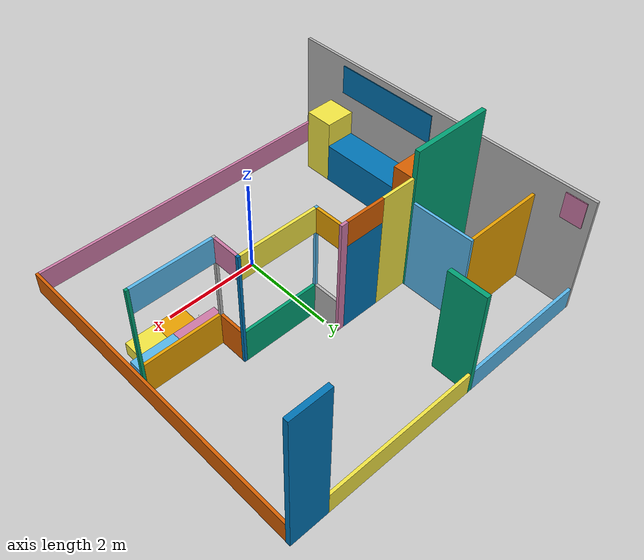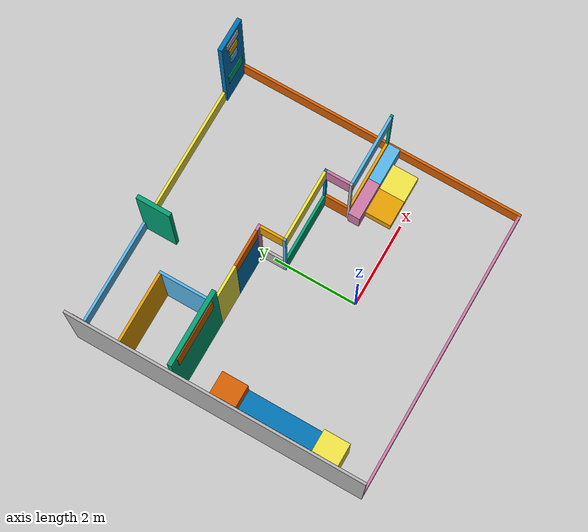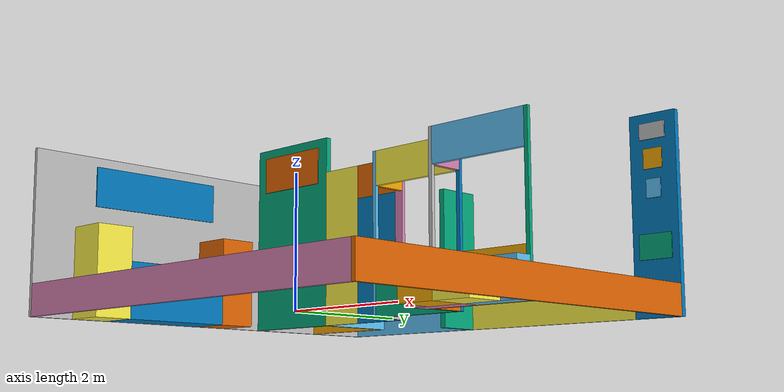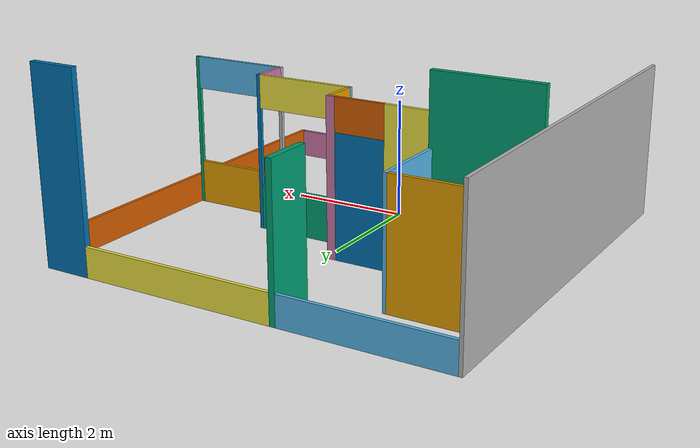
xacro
<?xml version="1.0"?>
<robot xmlns:xacro="http://www.ros.org/wiki/xacro"
       name="ipa-kitchen">

  <xacro:include filename="$(find cob_gazebo_worlds)/urdf/common.xacro" />
  <xacro:include filename="$(find cob_gazebo_worlds)/urdf/materials.urdf.xacro" />

  <xacro:macro name="ipa-kitchen" params="name">

  <gazebo>
    <plugin name="environment_gazebo_ros_control" filename="libgazebo_ros_control.so">
      <robotNamespace>world</robotNamespace>
      <robotParam>/world_description</robotParam>
    </plugin>
  </gazebo>

  <!-- world -->
  <link name="world"/>

  <!-- walls -->
  <!-- wall_00 -->
  <link name="wall_00">
    <xacro:box_inertial x="2.75" y="0.06" z="0.50" mass="5.0">
      <origin xyz="0 0 0" rpy="0 0 0" />
    </xacro:box_inertial>
    <visual>
      <origin xyz="0 0 0" />
      <geometry>
        <box size="2.75 0.06 0.50" />
      </geometry>
    </visual>
    <collision>
      <origin xyz="0 0 0" />
      <geometry>
        <box size="2.77 0.08 0.52" />
      </geometry>
    </collision>
  </link>

  <gazebo reference="wall_00">
    <material>IPA/Wall2</material>
  </gazebo>

  <joint name="joint_wall_00" type="fixed">
    <origin xyz="-2.156 4.791 0.250" rpy="0 0 0" />
    <parent link="world" />
    <child link="wall_00" />
  </joint>

  <!-- wall_01 -->
  <link name="wall_01">
    <xacro:box_inertial x="0.10" y="0.80" z="2.40" mass="5.0">
      <origin xyz="0 0 0" rpy="0 0 0" />
    </xacro:box_inertial>
    <visual>
      <origin xyz="0 0 0" />
      <geometry>
        <box size="0.10 0.80 2.40" />
      </geometry>
    </visual>
    <collision>
      <origin xyz="0 0 0" />
      <geometry>
        <box size="0.12 0.82 2.42" />
      </geometry>
    </collision>
  </link>

  <gazebo reference="wall_01">
    <material>IPA/Wall3</material>
  </gazebo>

  <joint name="joint_wall_01" type="fixed">
    <origin xyz="-0.731 4.421 1.200" rpy="0 0 0" />
    <parent link="world" />
    <child link="wall_01" />
  </joint>

  <!-- wall_02 -->
  <link name="wall_02">
    <xacro:box_inertial x="3.29" y="0.06" z="0.50" mass="5.0">
      <origin xyz="0 0 0" rpy="0 0 0" />
    </xacro:box_inertial>
    <visual>
      <origin xyz="0 0 0" />
      <geometry>
        <box size="3.29 0.06 0.50" />
      </geometry>
    </visual>
    <collision>
      <origin xyz="0 0 0" />
      <geometry>
        <box size="3.31 0.08 0.52" />
      </geometry>
    </collision>
  </link>

  <gazebo reference="wall_02">
    <material>IPA/Wall2</material>
  </gazebo>

  <joint name="joint_wall_02" type="fixed">
    <origin xyz="0.964 4.791 0.250" rpy="0 0 0" />
    <parent link="world" />
    <child link="wall_02" />
  </joint>

  <!-- wall_03 -->
  <link name="wall_03">
    <xacro:box_inertial x="0.80" y="0.10" z="3.20" mass="5.0">
      <origin xyz="0 0 0" rpy="0 0 0" />
    </xacro:box_inertial>
    <visual>
      <origin xyz="0 0 0" />
      <geometry>
        <box size="0.80 0.10 3.20" />
      </geometry>
    </visual>
    <collision>
      <origin xyz="0 0 0" />
      <geometry>
        <box size="0.82 0.12 3.22" />
      </geometry>
    </collision>
  </link>

  <gazebo reference="wall_03">
    <material>IPA/Wall</material>
  </gazebo>

  <joint name="joint_wall_03" type="fixed">
    <origin xyz="3.009 4.771 1.600" rpy="0 0 0" />
    <parent link="world" />
    <child link="wall_03" />
  </joint>

  <!-- wall_04 -->
  <link name="wall_04">
    <xacro:box_inertial x="0.06" y="6.90" z="0.50" mass="5.0">
      <origin xyz="0 0 0" rpy="0 0 0" />
    </xacro:box_inertial>
    <visual>
      <origin xyz="0 0 0" />
      <geometry>
        <box size="0.06 6.90 0.50" />
      </geometry>
    </visual>
    <collision>
      <origin xyz="0 0 0" />
      <geometry>
        <box size="0.08 6.92 0.52" />
      </geometry>
    </collision>
  </link>

  <gazebo reference="wall_04">
    <material>IPA/Wall2</material>
  </gazebo>

  <joint name="joint_wall_04" type="fixed">
    <origin xyz="3.379 1.271 0.250" rpy="0 0 0" />
    <parent link="world" />
    <child link="wall_04" />
  </joint>

  <!-- wall_06 -->
  <link name="wall_06">
    <xacro:box_inertial x="6.88" y="0.06" z="0.50" mass="5.0">
      <origin xyz="0 0 0" rpy="0 0 0" />
    </xacro:box_inertial>
    <visual>
      <origin xyz="0 0 0" />
      <geometry>
        <box size="6.88 0.06 0.50" />
      </geometry>
    </visual>
    <collision>
      <origin xyz="0 0 0" />
      <geometry>
        <box size="6.90 0.08 0.52" />
      </geometry>
    </collision>
  </link>

  <gazebo reference="wall_06">
    <material>IPA/Wall2</material>
  </gazebo>

  <joint name="joint_wall_06" type="fixed">
    <origin xyz="-0.091 -2.149 0.250" rpy="0 0 0" />
    <parent link="world" />
    <child link="wall_06" />
  </joint>

  <!-- wall_07 -->
  <link name="wall_07">
    <xacro:box_inertial x="0.06" y="7.00" z="2.60" mass="5.0">
      <origin xyz="0 0 0" rpy="0 0 0" />
    </xacro:box_inertial>
    <visual>
      <origin xyz="0 0 0" />
      <geometry>
        <box size="0.06 7.00 2.60" />
      </geometry>
    </visual>
    <collision>
      <origin xyz="0 0 0" />
      <geometry>
        <box size="0.08 7.02 2.62" />
      </geometry>
    </collision>
  </link>

  <gazebo reference="wall_07">
    <material>IPA/Wall</material>
  </gazebo>

  <joint name="joint_wall_07" type="fixed">
    <origin xyz="-3.561 1.321 1.300" rpy="0 0 0" />
    <parent link="world" />
    <child link="wall_07" />
  </joint>

  <!-- wall_08 -->
  <link name="wall_08">
    <xacro:box_inertial x="1.69" y="0.06" z="2.06" mass="5.0">
      <origin xyz="0 0 0" rpy="0 0 0" />
    </xacro:box_inertial>
    <visual>
      <origin xyz="0 0 0" />
      <geometry>
        <box size="1.69 0.06 2.06" />
      </geometry>
    </visual>
    <collision>
      <origin xyz="0 0 0" />
      <geometry>
        <box size="1.71 0.08 2.08" />
      </geometry>
    </collision>
  </link>

  <gazebo reference="wall_08">
    <material>IPA/Wall</material>
  </gazebo>

  <joint name="joint_wall_08" type="fixed">
    <origin xyz="-2.686 3.641 1.030" rpy="0 0 0" />
    <parent link="world" />
    <child link="wall_08" />
  </joint>

  <!-- wall_09 -->
  <link name="wall_09">
    <xacro:box_inertial x="0.06" y="1.30" z="2.06" mass="5.0">
      <origin xyz="0 0 0" rpy="0 0 0" />
    </xacro:box_inertial>
    <visual>
      <origin xyz="0 0 0" />
      <geometry>
        <box size="0.06 1.30 2.06" />
      </geometry>
    </visual>
    <collision>
      <origin xyz="0 0 0" />
      <geometry>
        <box size="0.08 1.32 2.08" />
      </geometry>
    </collision>
  </link>

  <gazebo reference="wall_09">
    <material>IPA/Wall</material>
  </gazebo>

  <joint name="joint_wall_09" type="fixed">
    <origin xyz="-1.811 3.021 1.030" rpy="0 0 0" />
    <parent link="world" />
    <child link="wall_09" />
  </joint>

  <!-- wall_10 -->
  <link name="wall_10">
    <xacro:box_inertial x="1.75" y="0.10" z="3.20" mass="5.0">
      <origin xyz="0 0 0" rpy="0 0 0" />
    </xacro:box_inertial>
    <visual>
      <origin xyz="0 0 0" />
      <geometry>
        <box size="1.75 0.10 3.20" />
      </geometry>
    </visual>
    <collision>
      <origin xyz="0 0 0" />
      <geometry>
        <box size="1.77 0.08 3.22" />
      </geometry>
    </collision>
  </link>

  <gazebo reference="wall_10">
    <material>IPA/Wall</material>
  </gazebo>

  <joint name="joint_wall_10" type="fixed">
    <origin xyz="-2.656 2.321 1.600" rpy="0 0 0" />
    <parent link="world" />
    <child link="wall_10" />
  </joint>

  <!-- wall_11 -->
  <link name="wall_11">
    <xacro:box_inertial x="0.75" y="0.06" z="2.60" mass="5.0">
      <origin xyz="0 0 0" rpy="0 0 0" />
    </xacro:box_inertial>
    <visual>
      <origin xyz="0 0 0" />
      <geometry>
        <box size="0.75 0.06 2.60" />
      </geometry>
    </visual>
    <collision>
      <origin xyz="0 0 0" />
      <geometry>
        <box size="0.77 0.08 2.62" />
      </geometry>
    </collision>
  </link>

  <gazebo reference="wall_11">
    <material>IPA/Wall</material>
  </gazebo>

  <joint name="joint_wall_11" type="fixed">
    <origin xyz="-1.406 2.301 1.300" rpy="0 0 0" />
    <parent link="world" />
    <child link="wall_11" />
  </joint>

  <!-- door -->
  <link name="door">
    <xacro:default_inertial/>
    <visual>
      <origin xyz="0.425 0 0" />
      <geometry>
        <box size="0.85 0.06 2.05" />
      </geometry>
    </visual>
    <collision>
      <origin xyz="0.425 0 0" />
      <geometry>
        <box size="0.75 0.06 2.01" />
      </geometry>
    </collision>
  </link>

  <gazebo reference="door">
    <material>IPA/Wall2</material>
  </gazebo>

  <joint name="door_joint" type="revolute" >
    <origin xyz="0.375 0.0 -0.275" rpy="0 0 0" />
    <parent link="wall_11" />
    <child link="door" />
    <axis xyz="0 0 1" />
    <limit effort="0.1" velocity="1" lower="-1.8" upper="1.8" />
  </joint>

  <transmission name="door_trans">
    <type>transmission_interface/SimpleTransmission</type>
    <joint name="door_joint">
      <hardwareInterface>hardware_interface/VelocityJointInterface</hardwareInterface>
    </joint>
    <actuator name="door_motor">
      <mechanicalReduction>1</mechanicalReduction>
    </actuator>
  </transmission>

  <!-- wall_12 -->
  <link name="wall_12">
    <xacro:box_inertial x="0.85" y="0.06" z="0.55" mass="5.0">
      <origin xyz="0 0 0" rpy="0 0 0" />
    </xacro:box_inertial>
    <visual>
      <origin xyz="0 0 0" />
      <geometry>
        <box size="0.85 0.06 0.55" />
      </geometry>
    </visual>
    <collision>
      <origin xyz="0 0 0" />
      <geometry>
        <box size="0.87 0.08 0.57" />
      </geometry>
    </collision>
  </link>

  <gazebo reference="wall_12">
    <material>IPA/Wall</material>
  </gazebo>

  <joint name="joint_wall_12" type="fixed">
    <origin xyz="-0.606 2.301 2.325" rpy="0 0 0" />
    <parent link="world" />
    <child link="wall_12" />
  </joint>

  <!-- wall_13 -->
  <link name="wall_13">
    <xacro:box_inertial x="0.15" y="0.06" z="2.60" mass="5.0">
      <origin xyz="0 0 0" rpy="0 0 0" />
    </xacro:box_inertial>
    <visual>
      <origin xyz="0 0 0" />
      <geometry>
        <box size="0.15 0.06 2.60" />
      </geometry>
    </visual>
    <collision>
      <origin xyz="0 0 0" />
      <geometry>
        <box size="0.17 0.08 2.62" />
      </geometry>
    </collision>
  </link>

  <gazebo reference="wall_13">
    <material>IPA/Wall</material>
  </gazebo>

  <joint name="joint_wall_13" type="fixed">
    <origin xyz="-0.106 2.301 1.300" rpy="0 0 0" />
    <parent link="world" />
    <child link="wall_13" />
  </joint>

  <!-- wall_14 -->
  <link name="wall_14">
    <xacro:box_inertial x="0.06" y="0.54" z="0.75" mass="5.0">
      <origin xyz="0 0 0" rpy="0 0 0" />
    </xacro:box_inertial>
    <visual>
      <origin xyz="0 0 0" />
      <geometry>
        <box size="0.06 0.54 0.75" />
      </geometry>
    </visual>
    <collision>
      <origin xyz="0 0 0" />
      <geometry>
        <box size="0.08 0.56 0.77" />
      </geometry>
    </collision>
  </link>

  <gazebo reference="wall_14">
    <material>IPA/Wall</material>
  </gazebo>

  <joint name="joint_wall_14" type="fixed">
    <origin xyz="-0.061 2.001 0.375" rpy="0 0 0" />
    <parent link="world" />
    <child link="wall_14" />
  </joint>

  <!-- wall_15 -->
  <link name="wall_15">
    <xacro:box_inertial x="0.06" y="0.54" z="0.55" mass="5.0">
      <origin xyz="0 0 0" rpy="0 0 0" />
    </xacro:box_inertial>
    <visual>
      <origin xyz="0 0 0" />
      <geometry>
        <box size="0.06 0.54 0.55" />
      </geometry>
    </visual>
    <collision>
      <origin xyz="0 0 0" />
      <geometry>
        <box size="0.08 0.56 0.57" />
      </geometry>
    </collision>
  </link>

  <gazebo reference="wall_15">
    <material>IPA/Wall</material>
  </gazebo>

  <joint name="joint_wall_15" type="fixed">
    <origin xyz="-0.061 2.001 2.325" rpy="0 0 0" />
    <parent link="world" />
    <child link="wall_15" />
  </joint>

  <!-- wall_16 -->
  <link name="wall_16">
    <xacro:box_inertial x="0.06" y="0.06" z="2.60" mass="5.0">
      <origin xyz="0 0 0" rpy="0 0 0" />
    </xacro:box_inertial>
    <visual>
      <origin xyz="0 0 0" />
      <geometry>
        <box size="0.06 0.06 2.60" />
      </geometry>
    </visual>
    <collision>
      <origin xyz="0 0 0" />
      <geometry>
        <box size="0.08 0.08 2.62" />
      </geometry>
    </collision>
  </link>

  <gazebo reference="wall_16">
    <material>IPA/Wall</material>
  </gazebo>

  <joint name="joint_wall_16" type="fixed">
    <origin xyz="-0.061 1.701 1.300" rpy="0 0 0" />
    <parent link="world" />
    <child link="wall_16" />
  </joint>

  <!-- wall_17 -->
  <link name="wall_17">
    <xacro:box_inertial x="1.63" y="0.06" z="0.75" mass="5.0">
      <origin xyz="0 0 0" rpy="0 0 0" />
    </xacro:box_inertial>
    <visual>
      <origin xyz="0 0 0" />
      <geometry>
        <box size="1.63 0.06 0.75" />
      </geometry>
    </visual>
    <collision>
      <origin xyz="0 0 0" />
      <geometry>
        <box size="1.65 0.08 0.77" />
      </geometry>
    </collision>
  </link>

  <gazebo reference="wall_17">
    <material>IPA/Wall</material>
  </gazebo>

  <joint name="joint_wall_17" type="fixed">
    <origin xyz="0.784 1.701 0.375" rpy="0 0 0" />
    <parent link="world" />
    <child link="wall_17" />
  </joint>

  <!-- wall_18 -->
  <link name="wall_18">
    <xacro:box_inertial x="1.63" y="0.06" z="0.55" mass="5.0">
      <origin xyz="0 0 0" rpy="0 0 0" />
    </xacro:box_inertial>
    <visual>
      <origin xyz="0 0 0" />
      <geometry>
        <box size="1.63 0.06 0.55" />
      </geometry>
    </visual>
    <collision>
      <origin xyz="0 0 0" />
      <geometry>
        <box size="1.65 0.08 0.57" />
      </geometry>
    </collision>
  </link>

  <gazebo reference="wall_18">
    <material>IPA/Wall</material>
  </gazebo>

  <joint name="joint_wall_18" type="fixed">
    <origin xyz="0.784 1.701 2.325" rpy="0 0 0" />
    <parent link="world" />
    <child link="wall_18" />
  </joint>

  <!-- wall_19 -->
  <link name="wall_19">
    <xacro:box_inertial x="0.06" y="0.06" z="2.60" mass="5.0">
      <origin xyz="0 0 0" rpy="0 0 0" />
    </xacro:box_inertial>
    <visual>
      <origin xyz="0 0 0" />
      <geometry>
        <box size="0.06 0.06 2.60" />
      </geometry>
    </visual>
    <collision>
      <origin xyz="0 0 0" />
      <geometry>
        <box size="0.08 0.08 2.62" />
      </geometry>
    </collision>
  </link>

  <gazebo reference="wall_19">
    <material>IPA/Wall</material>
  </gazebo>

  <joint name="joint_wall_19" type="fixed">
    <origin xyz="1.629 1.701 1.300" rpy="0 0 0" />
    <parent link="world" />
    <child link="wall_19" />
  </joint>

  <!-- wall_20 -->
  <link name="wall_20">
    <xacro:box_inertial x="0.6" y="0.54" z="0.75" mass="5.0">
      <origin xyz="0 0 0" rpy="0 0 0" />
    </xacro:box_inertial>
    <visual>
      <origin xyz="0 0 0" />
      <geometry>
        <box size="0.06 0.54 0.75" />
      </geometry>
    </visual>
    <collision>
      <origin xyz="0 0 0" />
      <geometry>
        <box size="0.08 0.56 0.77" />
      </geometry>
    </collision>
  </link>

  <gazebo reference="wall_20">
    <material>IPA/Wall</material>
  </gazebo>

  <joint name="joint_wall_20" type="fixed">
    <origin xyz="1.629 1.401 0.375" rpy="0 0 0" />
    <parent link="world" />
    <child link="wall_20" />
  </joint>

  <!-- wall_21 -->
  <link name="wall_21">
    <xacro:box_inertial x="0.6" y="0.54" z="0.55" mass="5.0">
      <origin xyz="0 0 0" rpy="0 0 0" />
    </xacro:box_inertial>
    <visual>
      <origin xyz="0 0 0" />
      <geometry>
        <box size="0.06 0.54 0.55" />
      </geometry>
    </visual>
    <collision>
      <origin xyz="0 0 0" />
      <geometry>
        <box size="0.08 0.56 0.57" />
      </geometry>
    </collision>
  </link>

  <gazebo reference="wall_21">
    <material>IPA/Wall</material>
  </gazebo>

  <joint name="joint_wall_21" type="fixed">
    <origin xyz="1.629 1.401 2.325" rpy="0 0 0" />
    <parent link="world" />
    <child link="wall_21" />
  </joint>

  <!-- wall_22 -->
  <link name="wall_22">
    <xacro:box_inertial x="0.6" y="0.6" z="2.60" mass="5.0">
      <origin xyz="0 0 0" rpy="0 0 0" />
    </xacro:box_inertial>
    <visual>
      <origin xyz="0 0 0" />
      <geometry>
        <box size="0.06 0.06 2.60" />
      </geometry>
    </visual>
    <collision>
      <origin xyz="0 0 0" />
      <geometry>
        <box size="0.08 0.08 2.62" />
      </geometry>
    </collision>
  </link>

  <gazebo reference="wall_22">
    <material>IPA/Wall</material>
  </gazebo>

  <joint name="joint_wall_22" type="fixed">
    <origin xyz="1.629 1.101 1.300" rpy="0 0 0" />
    <parent link="world" />
    <child link="wall_22" />
  </joint>

  <!-- wall_23 -->
  <link name="wall_23">
    <xacro:box_inertial x="1.65" y="0.06" z="0.75" mass="5.0">
      <origin xyz="0 0 0" rpy="0 0 0" />
    </xacro:box_inertial>
    <visual>
      <origin xyz="0 0 0" />
      <geometry>
        <box size="1.63 0.06 0.75" />
      </geometry>
    </visual>
    <collision>
      <origin xyz="0 0 0" />
      <geometry>
        <box size="1.65 0.08 0.77" />
      </geometry>
    </collision>
  </link>

  <gazebo reference="wall_23">
    <material>IPA/Wall</material>
  </gazebo>

  <joint name="joint_wall_23" type="fixed">
    <origin xyz="2.474 1.101 0.375" rpy="0 0 0" />
    <parent link="world" />
    <child link="wall_23" />
  </joint>

  <!-- wall_24 -->
  <link name="wall_24">
    <xacro:box_inertial x="1.63" y="0.06" z="0.55" mass="5.0">
      <origin xyz="0 0 0" rpy="0 0 0" />
    </xacro:box_inertial>
    <visual>
      <origin xyz="0 0 0" />
      <geometry>
        <box size="1.63 0.06 0.55" />
      </geometry>
    </visual>
    <collision>
      <origin xyz="0 0 0" />
      <geometry>
        <box size="1.65 0.08 0.57" />
      </geometry>
    </collision>
  </link>

  <gazebo reference="wall_24">
    <material>IPA/Wall</material>
  </gazebo>

  <joint name="joint_wall_24" type="fixed">
    <origin xyz="2.474 1.101 2.325" rpy="0 0 0" />
    <parent link="world" />
    <child link="wall_24" />
  </joint>

  <!-- wall_25 -->
  <link name="wall_25">
    <xacro:box_inertial x="0.6" y="0.06" z="2.60" mass="5.0">
      <origin xyz="0 0 0" rpy="0 0 0" />
    </xacro:box_inertial>
    <visual>
      <origin xyz="0 0 0" />
      <geometry>
        <box size="0.06 0.06 2.60" />
      </geometry>
    </visual>
    <collision>
      <origin xyz="0 0 0" />
      <geometry>
        <box size="0.08 0.08 2.62" />
      </geometry>
    </collision>
  </link>

  <gazebo reference="wall_25">
    <material>IPA/Wall</material>
  </gazebo>

  <joint name="joint_wall_25" type="fixed">
    <origin xyz="3.319 1.101 1.300" rpy="0 0 0" />
    <parent link="world" />
    <child link="wall_25" />
  </joint>

  <!-- kitchen -->
  <!-- kitchen_left -->
  <link name="kitchen_left">
    <xacro:box_inertial x="0.66" y="0.62" z="1.44" mass="5.0">
      <origin xyz="0 0 0" rpy="0 0 0" />
    </xacro:box_inertial>
    <visual>
      <origin xyz="0 0 0" />
      <geometry>
        <mesh filename="package://cob_gazebo_worlds/Media/materials/textures/kitchen_left.dae" />
      </geometry>
    </visual>
    <collision>
      <origin xyz="0 0 0" />
      <geometry>
        <box size="0.66 0.62 1.44" />
      </geometry>
    </collision>
  </link>

  <joint name="joint_kitchen_left" type="fixed">
    <origin xyz="-3.201 -1.155 0.720" rpy="0 0 0" />
    <parent link="world" />
    <child link="kitchen_left" />
  </joint>

  <!-- kitchen_middle -->
  <link name="kitchen_middle">
    <xacro:box_inertial x="0.66" y="1.80" z="0.90" mass="5.0">
      <origin xyz="0 0 0" rpy="0 0 0" />
    </xacro:box_inertial>
    <visual>
      <origin xyz="0 0 0" />
      <geometry>
        <mesh filename="package://cob_gazebo_worlds/Media/materials/textures/kitchen_middle.dae" />
      </geometry>
    </visual>
    <collision>
      <origin xyz="0 0 0" />
      <geometry>
        <box size="0.66 1.80 0.90" />
      </geometry>
    </collision>
  </link>

  <joint name="joint_kitchen_middle" type="fixed">
    <origin xyz="-3.201 0.055 0.450" rpy="0 0 0" />
    <parent link="world" />
    <child link="kitchen_middle" />
  </joint>

  <!-- kitchen_right -->
  <link name="kitchen_right">
    <xacro:box_inertial x="0.66" y="0.62" z="1.44" mass="5.0">
      <origin xyz="0 0 0" rpy="0 0 0" />
    </xacro:box_inertial>
    <visual>
      <origin xyz="0 0 0" />
      <geometry>
        <mesh filename="package://cob_gazebo_worlds/Media/materials/textures/kitchen_right.dae" />
      </geometry>
    </visual>
    <collision>
      <origin xyz="0 0 0" />
      <geometry>
        <box size="0.66 0.62 1.44" />
      </geometry>
    </collision>
  </link>

  <joint name="joint_kitchen_right" type="fixed">
    <origin xyz="-3.201 1.265 0.720" rpy="0 0 0" />
    <parent link="world" />
    <child link="kitchen_right" />
  </joint>

  <!-- couch -->
  <!-- left couch back -->
  <link name="left_couch_back">
    <xacro:box_inertial x="0.90" y="0.28" z="0.60" mass="5.0">
      <origin xyz="0 0 0" rpy="0 0 0" />
    </xacro:box_inertial>
    <visual>
      <origin xyz="0 0 0" />
      <geometry>
        <mesh filename="package://cob_gazebo_worlds/Media/materials/textures/couch_back.dae" />
      </geometry>
    </visual>
    <collision>
      <origin xyz="0 0 0" />
      <geometry>
        <box size="0.90 0.28 0.60" />
      </geometry>
    </collision>
  </link>

  <joint name="joint_left_couch_back" type="fixed">
    <origin xyz="1.999 0.931 0.300" rpy="0 0 0" />
    <parent link="world" />
    <child link="left_couch_back" />
  </joint>

  <!-- left couch side -->
  <link name="left_couch_side">
    <xacro:box_inertial x="0.28" y="0.62" z="0.46" mass="5.0">
      <origin xyz="0 0 0" rpy="0 0 0" />
    </xacro:box_inertial>
    <visual>
      <origin xyz="0 0 0" />
      <geometry>
        <mesh filename="package://cob_gazebo_worlds/Media/materials/textures/couch_left_side.dae" />
      </geometry>
    </visual>
    <collision>
      <origin xyz="0 0 0" />
      <geometry>
        <box size="0.28 0.62 0.46" />
      </geometry>
    </collision>
  </link>

  <joint name="joint_left_couch_side" type="fixed">
    <origin xyz="1.689 0.481 0.230" rpy="0 0 0" />
    <parent link="world" />
    <child link="left_couch_side" />
  </joint>

  <!-- left couch middle -->
  <link name="left_couch_middle">
    <xacro:box_inertial x="0.62" y="0.62" z="0.30" mass="5.0">
      <origin xyz="0 0 0" rpy="0 0 0" />
    </xacro:box_inertial>
    <visual>
      <origin xyz="0 0 0" />
      <geometry>
        <mesh filename="package://cob_gazebo_worlds/Media/materials/textures/couch_middle.dae" />
      </geometry>
    </visual>
    <collision>
      <origin xyz="0 0 0" />
      <geometry>
        <box size="0.62 0.62 0.30" />
      </geometry>
    </collision>
  </link>

  <joint name="joint_left_couch_middle" type="fixed">
    <origin xyz="2.139 0.481 0.150" rpy="0 0 0" />
    <parent link="world" />
    <child link="left_couch_middle" />
  </joint>

  <!-- right couch back -->
  <link name="right_couch_back">
    <xacro:box_inertial x="0.90" y="0.28" z="0.60" mass="5.0">
      <origin xyz="0 0 0" rpy="0 0 0" />
    </xacro:box_inertial>
    <visual>
      <origin xyz="0 0 0" />
      <geometry>
        <mesh filename="package://cob_gazebo_worlds/Media/materials/textures/couch_back.dae" />
      </geometry>
    </visual>
    <collision>
      <origin xyz="0 0 0" />
      <geometry>
        <box size="0.90 0.28 0.60" />
      </geometry>
    </collision>
  </link>

  <joint name="joint_right_couch_back" type="fixed">
    <origin xyz="2.899 0.931 0.300" rpy="0 0 0" />
    <parent link="world" />
    <child link="right_couch_back" />
  </joint>

  <!-- right couch side -->
  <link name="right_couch_side">
    <xacro:box_inertial x="0.28" y="0.62" z="0.46" mass="5.0">
      <origin xyz="0 0 0" rpy="0 0 0" />
    </xacro:box_inertial>
    <visual>
      <origin xyz="0 0 0" />
      <geometry>
        <mesh filename="package://cob_gazebo_worlds/Media/materials/textures/couch_right_side.dae" />
      </geometry>
    </visual>
    <collision>
      <origin xyz="0 0 0" />
      <geometry>
        <box size="0.28 0.62 0.46" />
      </geometry>
    </collision>
  </link>

  <joint name="joint_right_couch_side" type="fixed">
    <origin xyz="3.209 0.481 0.230" rpy="0 0 0" />
    <parent link="world" />
    <child link="right_couch_side" />
  </joint>

  <!-- right couch middle -->
  <link name="right_couch_middle">
    <xacro:box_inertial x="0.62" y="0.62" z="0.30" mass="5.0">
      <origin xyz="0 0 0" rpy="0 0 0" />
    </xacro:box_inertial>
    <visual>
      <origin xyz="0 0 0" />
      <geometry>
        <mesh filename="package://cob_gazebo_worlds/Media/materials/textures/couch_middle.dae" />
      </geometry>
    </visual>
    <collision>
      <origin xyz="0 0 0" />
      <geometry>
        <box size="0.62 0.62 0.30" />
      </geometry>
    </collision>
  </link>

  <joint name="joint_right_couch_middle" type="fixed">
    <origin xyz="2.759 0.481 0.150" rpy="0 0 0" />
    <parent link="world" />
    <child link="right_couch_middle" />
  </joint>

  <!-- pictures -->
  <!-- picture_00 -->
  <link name="picture_00">
    <xacro:box_inertial x="0.02" y="2.33" z="0.64" mass="5.0">
      <origin xyz="0 0 0" rpy="0 0 0" />
    </xacro:box_inertial>
    <visual>
      <origin xyz="0 0 0" />
      <geometry>
        <box size="0.02 2.33 0.64" />
      </geometry>
    </visual>
    <collision>
      <origin xyz="0 0 0" />
      <geometry>
        <box size="0.02 2.33 0.64" />
      </geometry>
    </collision>
  </link>

  <gazebo reference="picture_00">
    <material>IPA/FraunhoferIPA</material>
  </gazebo>

  <joint name="joint_picture_00" type="fixed">
    <origin xyz="-3.521 0.055 2.130" rpy="0 0 0" />
    <parent link="world" />
    <child link="picture_00" />
  </joint>

  <!-- picture_01 -->
  <link name="picture_01">
    <xacro:box_inertial x="1.35" y="0.20" z="0.62" mass="5.0">
      <origin xyz="0 0 0" rpy="0 0 0" />
    </xacro:box_inertial>
    <visual>
      <origin xyz="0 0 0" />
      <geometry>
        <box size="1.35 0.02 0.62" />
      </geometry>
    </visual>
    <collision>
      <origin xyz="0 0 0" />
      <geometry>
        <box size="1.35 0.02 0.62" />
      </geometry>
    </collision>
  </link>

  <gazebo reference="picture_01">
    <material>IPA/Future</material>
  </gazebo>

  <joint name="joint_picture_01" type="fixed">
    <origin xyz="-2.656 2.261 2.740" rpy="0 0 0" />
    <parent link="world" />
    <child link="picture_01" />
  </joint>

  <!-- picture_02 -->
  <link name="picture_02">
    <xacro:box_inertial x="0.02" y="0.44" z="0.56" mass="5.0">
      <origin xyz="0 0 0" rpy="0 0 0" />
    </xacro:box_inertial>
    <visual>
      <origin xyz="0 0 0" />
      <geometry>
        <box size="0.02 0.44 0.56" />
      </geometry>
    </visual>
    <collision>
      <origin xyz="0 0 0" />
      <geometry>
        <box size="0.02 0.44 0.56" />
      </geometry>
    </collision>
  </link>

  <gazebo reference="picture_02">
    <material>IPA/Care-O-bot</material>
  </gazebo>

  <joint name="joint_picture_02" type="fixed">
    <origin xyz="-3.521 4.451 2.200" rpy="0 0 0" />
    <parent link="world" />
    <child link="picture_02" />
  </joint>

  <!-- picture_03 -->
  <link name="picture_03">
    <xacro:box_inertial x="0.44" y="0.02" z="0.26" mass="5.0">
      <origin xyz="0 0 0" rpy="0 0 0" />
    </xacro:box_inertial>
    <visual>
      <origin xyz="0 0 0" />
      <geometry>
        <box size="0.44 0.02 0.26" />
      </geometry>
    </visual>
    <collision>
      <origin xyz="0 0 0" />
      <geometry>
        <box size="0.44 0.02 0.26" />
      </geometry>
    </collision>
  </link>

  <gazebo reference="picture_03">
    <material>IPA/Brics</material>
  </gazebo>

  <joint name="joint_picture_03" type="fixed">
    <origin xyz="3.009 4.711 2.920" rpy="0 0 0" />
    <parent link="world" />
    <child link="picture_03" />
  </joint>

  <!-- picture_04 -->
  <link name="picture_04">
    <xacro:box_inertial x="0.32" y="0.02" z="0.32" mass="5.0">
      <origin xyz="0 0 0" rpy="0 0 0" />
    </xacro:box_inertial>
    <visual>
      <origin xyz="0 0 0" />
      <geometry>
        <box size="0.32 0.02 0.32" />
      </geometry>
    </visual>
    <collision>
      <origin xyz="0 0 0" />
      <geometry>
        <box size="0.32 0.02 0.32" />
      </geometry>
    </collision>
  </link>

  <gazebo reference="picture_04">
    <material>IPA/WiMiCare</material>
  </gazebo>

  <joint name="joint_picture_04" type="fixed">
    <origin xyz="3.009 4.711 2.480" rpy="0 0 0" />
    <parent link="world" />
    <child link="picture_04" />
  </joint>

  <!-- picture_05 -->
  <link name="picture_05">
    <xacro:box_inertial x="0.25" y="0.02" z="0.30" mass="5.0">
      <origin xyz="0 0 0" rpy="0 0 0" />
    </xacro:box_inertial>
    <visual>
      <origin xyz="0 0 0" />
      <geometry>
        <box size="0.25 0.02 0.30" />
      </geometry>
    </visual>
    <collision>
      <origin xyz="0 0 0" />
      <geometry>
        <box size="0.25 0.02 0.30" />
      </geometry>
    </collision>
  </link>

  <gazebo reference="picture_05">
    <material>IPA/SRS</material>
  </gazebo>

  <joint name="joint_picture_05" type="fixed">
    <origin xyz="3.009 4.711 2.010" rpy="0 0 0" />
    <parent link="world" />
    <child link="picture_05" />
  </joint>

  <!-- picture_06 -->
  <link name="picture_06">
    <xacro:box_inertial x="0.56" y="0.02" z="0.40" mass="5.0">
      <origin xyz="0 0 0" rpy="0 0 0" />
    </xacro:box_inertial>
    <visual>
      <origin xyz="0 0 0" />
      <geometry>
        <box size="0.56 0.02 0.40" />
      </geometry>
    </visual>
    <collision>
      <origin xyz="0 0 0" />
      <geometry>
        <box size="0.56 0.02 0.40" />
      </geometry>
    </collision>
  </link>

  <gazebo reference="picture_06">
    <material>IPA/Comic</material>
  </gazebo>

  <joint name="joint_picture_06" type="fixed">
    <origin xyz="3.009 4.711 1.100" rpy="0 0 0" />
    <parent link="world" />
    <child link="picture_06" />
  </joint>

  </xacro:macro>

  <xacro:ipa-kitchen name="ipa-kitchen" />

</robot>

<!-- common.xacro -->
<robot xmlns:xacro="http://www.ros.org/wiki/xacro">

  <xacro:property name="M_PI" value="3.1415926535897931" />

  <!-- see https://secure.wikimedia.org/wikipedia/en/wiki/List_of_moment_of_inertia_tensors -->
  <xacro:macro name="sphere_inertial" params="radius mass *origin">
    <inertial>
      <mass value="${mass}" />
      <xacro:insert_block name="origin" />
      <inertia ixx="${0.4 * mass * radius * radius}" ixy="0.0" ixz="0.0"
        iyy="${0.4 * mass * radius * radius}" iyz="0.0"
        izz="${0.4 * mass * radius * radius}" />
    </inertial>
  </xacro:macro>

  <xacro:macro name="cylinder_inertial" params="radius length mass *origin">
    <inertial>
      <mass value="${mass}" />
      <xacro:insert_block name="origin" />
      <inertia ixx="${0.0833333 * mass * (3 * radius * radius + length * length)}" ixy="0.0" ixz="0.0"
        iyy="${0.0833333 * mass * (3 * radius * radius + length * length)}" iyz="0.0"
        izz="${0.5 * mass * radius * radius}" />
    </inertial>
  </xacro:macro>

  <xacro:macro name="box_inertial" params="x y z mass *origin">
    <inertial>
      <mass value="${mass}" />
      <xacro:insert_block name="origin" />
      <inertia ixx="${0.0833333 * mass * (y*y + z*z)}" ixy="0.0" ixz="0.0"
        iyy="${0.0833333 * mass * (x*x + z*z)}" iyz="0.0"
        izz="${0.0833333 * mass * (x*x + y*y)}" />
    </inertial>
  </xacro:macro>

  <xacro:macro name="default_inertial">
    <inertial>
      <mass value="0.01"/>
      <origin xyz="0 0 0"/>
      <inertia ixx="0.001" ixy="0.0" ixz="0.0" iyy="0.001" iyz="0.0" izz="0.001" />
    </inertial>
  </xacro:macro>

</robot>

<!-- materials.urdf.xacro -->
<robot>

  <material name="IPA/Blue">
    <color rgba="0.0 0.0 0.8 1.0"/>
  </material>

  <material name="IPA/Green">
    <color rgba="0.0 0.8 0.0 1.0"/>
  </material>

  <material name="IPA/Grey">
    <color rgba="0.7 0.7 0.7 1.0"/>
  </material>

  <material name="IPA/Grey2">
    <color rgba="0.81 0.81 0.81 1.0"/>
  </material>

  <material name="IPA/Red">
    <color rgba="0.8 0.0 0.0 1.0"/>
  </material>

  <material name="IPA/White">
    <color rgba="1.0 1.0 1.0 1.0"/>
  </material>

  <material name="IPA/Black">
    <color rgba="0.0 0.0 0.0 1.0"/>
  </material>

  <material name="IPA/Transparent">
    <color rgba="0.81 0.81 0.81 0.0"/>
  </material>

  <material name="IPA/LightBlue">
    <color rgba="0.624 0.698 0.858 1"/>
  </material>

</robot>
